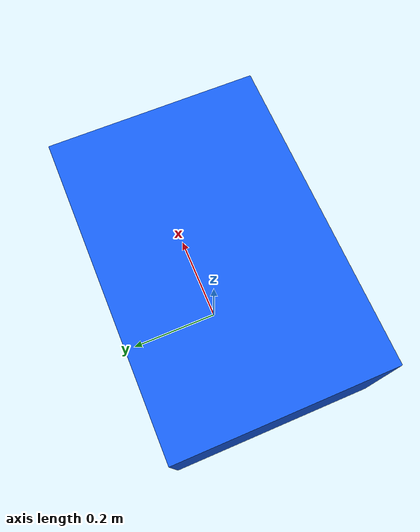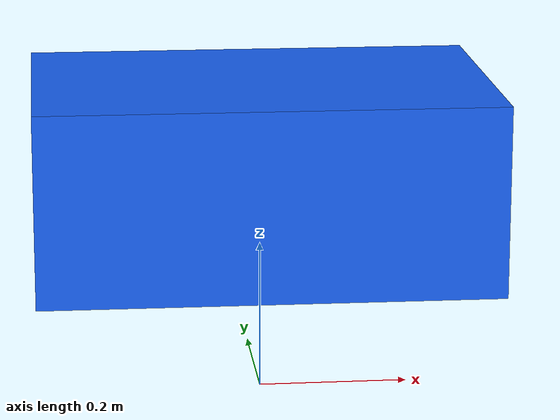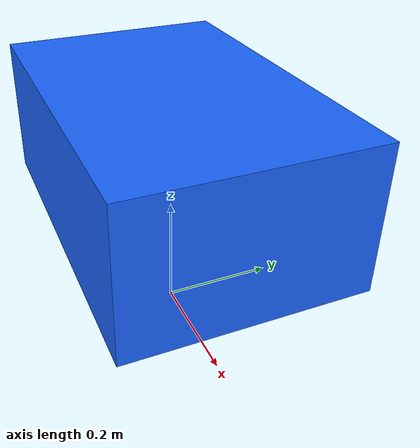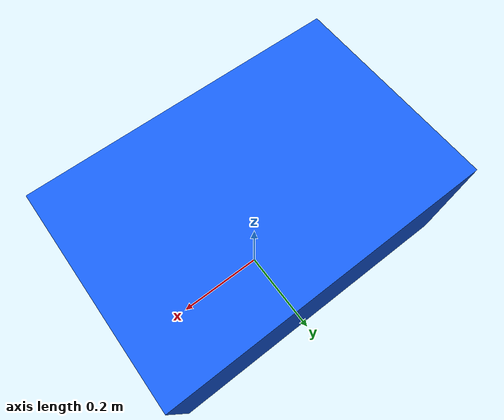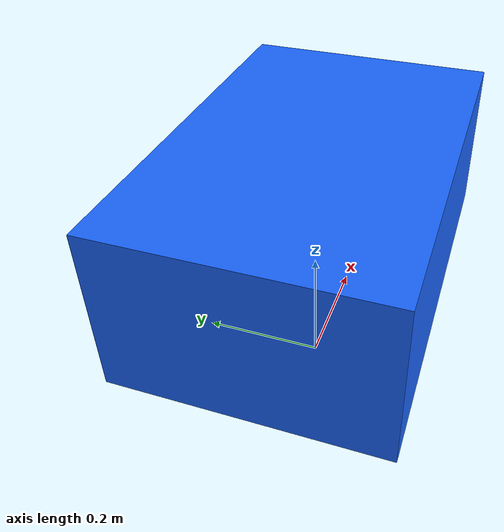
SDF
<?xml version="1.0" ?>
<sdf version="1.9">
  <model name="simple_box_robot">
    <pose>0 0 0.3 0 0 0</pose>

    <link name="base_link">
      <inertial>
        <mass>5.0</mass>
        <inertia>
          <ixx>0.2</ixx>
          <iyy>0.2</iyy>
          <izz>0.2</izz>
          <ixy>0.0</ixy>
          <ixz>0.0</ixz>
          <iyz>0.0</iyz>
        </inertia>
      </inertial>

      <collision name="collision">
        <geometry>
          <box>
            <size>0.6 0.4 0.25</size>
          </box>
        </geometry>
      </collision>

      <visual name="visual">
        <geometry>
          <box>
            <size>0.6 0.4 0.25</size>
          </box>
        </geometry>
        <material>
          <diffuse>0.1 0.4 1.0 1.0</diffuse>
        </material>
      </visual>
    </link>

    <!-- Plugin nativo de Gazebo para mover el modelo con Twist -->
    <plugin
      filename="gz-sim-velocity-control-system"
      name="gz::sim::systems::VelocityControl">
      <topic>/simple_box_robot/cmd_vel</topic>
    </plugin>

  </model>
</sdf>
